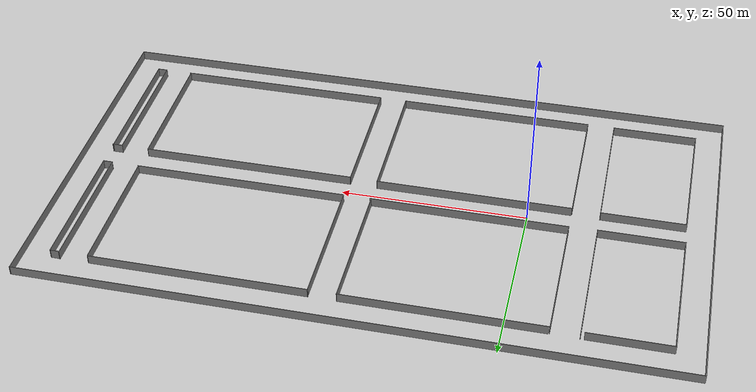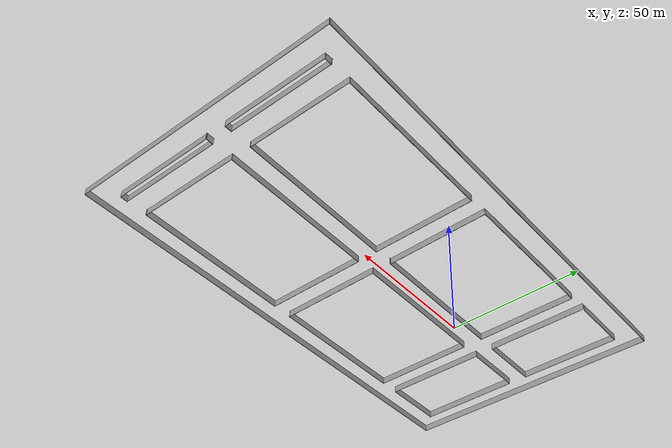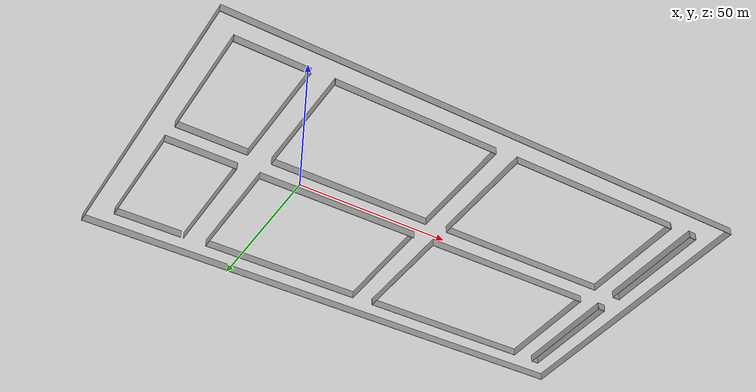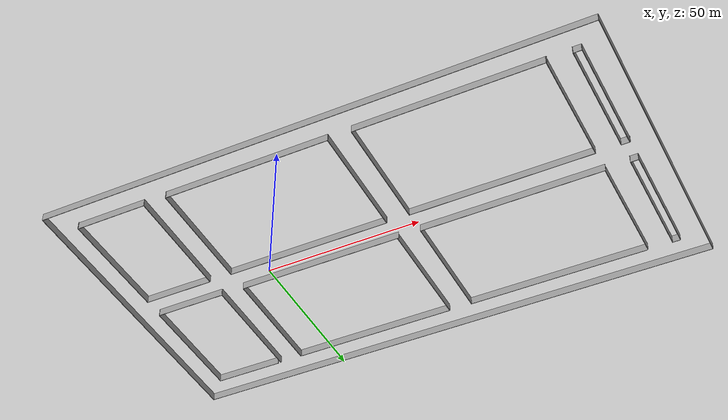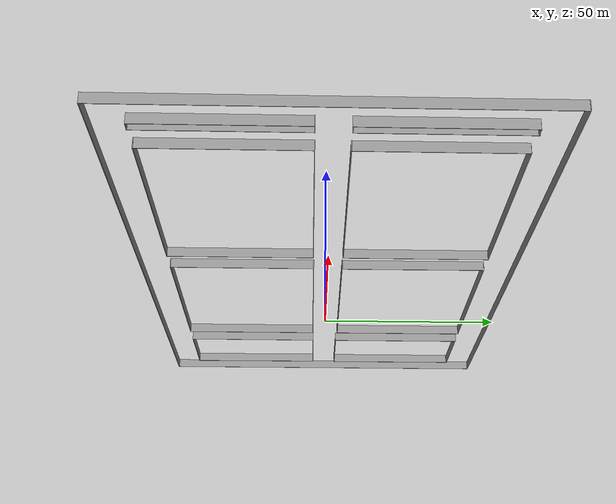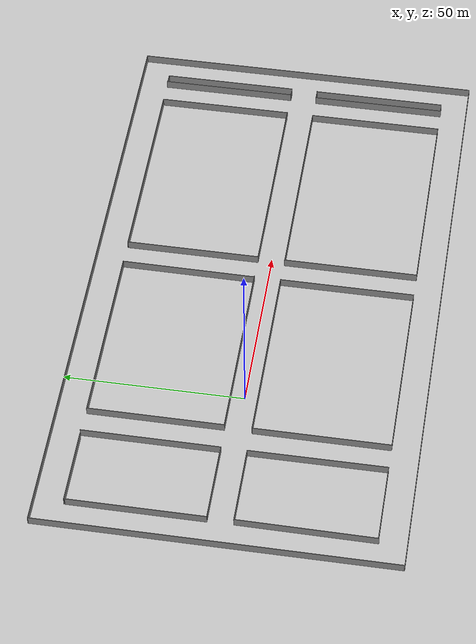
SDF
<?xml version='1.0'?>
<sdf version='1.7'>
  <model name='small_city_tracks'>
    <pose>37.5388 0.213089 0 0 -0 0</pose>
    <link name='Wall_1'>
      <collision name='Wall_1_Collision'>
        <geometry>
          <box>
            <size>22.3923 0.15 2.5</size>
          </box>
        </geometry>
        <pose>0 0 1.25 0 -0 0</pose>
      </collision>
      <visual name='Wall_1_Visual'>
        <pose>0 0 1.25 0 -0 0</pose>
        <geometry>
          <box>
            <size>22.3923 0.15 2.5</size>
          </box>
        </geometry>
        <material>
          <script>
            <uri>file://media/materials/scripts/gazebo.material</uri>
            <name>Gazebo/Grey</name>
          </script>
          <ambient>1 1 1 1</ambient>
        </material>
        <meta>
          <layer>0</layer>
        </meta>
      </visual>
      <pose>-67.5445 -3.7636 0 0 -0 3.14159</pose>
    </link>
    <link name='Wall_11'>
      <collision name='Wall_11_Collision'>
        <geometry>
          <box>
            <size>37.7906 0.15 2.5</size>
          </box>
        </geometry>
        <pose>0 0 1.25 0 -0 0</pose>
      </collision>
      <visual name='Wall_11_Visual'>
        <pose>0 0 1.25 0 -0 0</pose>
        <geometry>
          <box>
            <size>37.7906 0.15 2.5</size>
          </box>
        </geometry>
        <material>
          <script>
            <uri>file://media/materials/scripts/gazebo.material</uri>
            <name>Gazebo/Grey</name>
          </script>
          <ambient>1 1 1 1</ambient>
        </material>
        <meta>
          <layer>0</layer>
        </meta>
      </visual>
      <pose>-56.223 -22.5838 0 0 -0 -1.56772</pose>
    </link>
    <link name='Wall_13'>
      <collision name='Wall_13_Collision'>
        <geometry>
          <box>
            <size>172.5 0.15 2.5</size>
          </box>
        </geometry>
        <pose>0 0 1.25 0 -0 0</pose>
      </collision>
      <visual name='Wall_13_Visual'>
        <pose>0 0 1.25 0 -0 0</pose>
        <geometry>
          <box>
            <size>172.5 0.15 2.5</size>
          </box>
        </geometry>
        <material>
          <script>
            <uri>file://media/materials/scripts/gazebo.material</uri>
            <name>Gazebo/Grey</name>
          </script>
          <ambient>1 1 1 1</ambient>
        </material>
        <meta>
          <layer>0</layer>
        </meta>
      </visual>
      <pose>-0.028448 -49.05 0 0 -0 0</pose>
    </link>
    <link name='Wall_18'>
      <collision name='Wall_18_Collision'>
        <geometry>
          <box>
            <size>98.25 0.15 2.5</size>
          </box>
        </geometry>
        <pose>0 0 1.25 0 -0 0</pose>
      </collision>
      <visual name='Wall_18_Visual'>
        <pose>0 0 1.25 0 -0 0</pose>
        <geometry>
          <box>
            <size>98.25 0.15 2.5</size>
          </box>
        </geometry>
        <material>
          <script>
            <uri>file://media/materials/scripts/gazebo.material</uri>
            <name>Gazebo/Grey</name>
          </script>
          <ambient>1 1 1 1</ambient>
        </material>
        <meta>
          <layer>0</layer>
        </meta>
      </visual>
      <pose>86.1466 2e-06 0 0 -0 1.5708</pose>
    </link>
    <link name='Wall_20'>
      <collision name='Wall_20_Collision'>
        <geometry>
          <box>
            <size>172.5 0.15 2.5</size>
          </box>
        </geometry>
        <pose>0 0 1.25 0 -0 0</pose>
      </collision>
      <visual name='Wall_20_Visual'>
        <pose>0 0 1.25 0 -0 0</pose>
        <geometry>
          <box>
            <size>172.5 0.15 2.5</size>
          </box>
        </geometry>
        <material>
          <script>
            <uri>file://media/materials/scripts/gazebo.material</uri>
            <name>Gazebo/Grey</name>
          </script>
          <ambient>1 1 1 1</ambient>
        </material>
        <meta>
          <layer>0</layer>
        </meta>
      </visual>
      <pose>0.028448 49.0328 0 0 -0 3.14159</pose>
    </link>
    <link name='Wall_22'>
      <collision name='Wall_22_Collision'>
        <geometry>
          <box>
            <size>98 0.15 2.5</size>
          </box>
        </geometry>
        <pose>0 0 1.25 0 -0 0</pose>
      </collision>
      <visual name='Wall_22_Visual'>
        <pose>0 0 1.25 0 -0 0</pose>
        <geometry>
          <box>
            <size>98 0.15 2.5</size>
          </box>
        </geometry>
        <material>
          <script>
            <uri>file://media/materials/scripts/gazebo.material</uri>
            <name>Gazebo/Grey</name>
          </script>
          <ambient>1 1 1 1</ambient>
        </material>
        <meta>
          <layer>0</layer>
        </meta>
      </visual>
      <pose>-86.1466 0.107784 0 0 -0 -1.5708</pose>
    </link>
    <link name='Wall_24'>
      <collision name='Wall_24_Collision'>
        <geometry>
          <box>
            <size>37.5 0.15 2.5</size>
          </box>
        </geometry>
        <pose>0 0 1.25 0 -0 0</pose>
      </collision>
      <visual name='Wall_24_Visual'>
        <pose>0 0 1.25 0 -0 0</pose>
        <geometry>
          <box>
            <size>37.5 0.15 2.5</size>
          </box>
        </geometry>
        <material>
          <script>
            <uri>file://media/materials/scripts/gazebo.material</uri>
            <name>Gazebo/Grey</name>
          </script>
          <ambient>1 1 1 1</ambient>
        </material>
        <meta>
          <layer>0</layer>
        </meta>
      </visual>
      <pose>-78.8482 21.9874 0 0 -0 -1.5708</pose>
    </link>
    <link name='Wall_26'>
      <collision name='Wall_26_Collision'>
        <geometry>
          <box>
            <size>22.75 0.15 2.5</size>
          </box>
        </geometry>
        <pose>0 0 1.25 0 -0 0</pose>
      </collision>
      <visual name='Wall_26_Visual'>
        <pose>0 0 1.25 0 -0 0</pose>
        <geometry>
          <box>
            <size>22.75 0.15 2.5</size>
          </box>
        </geometry>
        <material>
          <script>
            <uri>file://media/materials/scripts/gazebo.material</uri>
            <name>Gazebo/Grey</name>
          </script>
          <ambient>1 1 1 1</ambient>
        </material>
        <meta>
          <layer>0</layer>
        </meta>
      </visual>
      <pose>-67.5482 3.31241 0 0 -0 0</pose>
    </link>
    <link name='Wall_28'>
      <collision name='Wall_28_Collision'>
        <geometry>
          <box>
            <size>38 0.15 2.5</size>
          </box>
        </geometry>
        <pose>0 0 1.25 0 -0 0</pose>
      </collision>
      <visual name='Wall_28_Visual'>
        <pose>0 0 1.25 0 -0 0</pose>
        <geometry>
          <box>
            <size>38 0.15 2.5</size>
          </box>
        </geometry>
        <material>
          <script>
            <uri>file://media/materials/scripts/gazebo.material</uri>
            <name>Gazebo/Grey</name>
          </script>
          <ambient>1 1 1 1</ambient>
        </material>
        <meta>
          <layer>0</layer>
        </meta>
      </visual>
      <pose>-56.2482 22.2374 0 0 -0 1.5708</pose>
    </link>
    <link name='Wall_30'>
      <collision name='Wall_30_Collision'>
        <geometry>
          <box>
            <size>21.75 0.15 2.5</size>
          </box>
        </geometry>
        <pose>0 0 1.25 0 -0 0</pose>
      </collision>
      <visual name='Wall_30_Visual'>
        <pose>0 0 1.25 0 -0 0</pose>
        <geometry>
          <box>
            <size>21.75 0.15 2.5</size>
          </box>
        </geometry>
        <material>
          <script>
            <uri>file://media/materials/scripts/gazebo.material</uri>
            <name>Gazebo/Grey</name>
          </script>
          <ambient>1 1 1 1</ambient>
        </material>
        <meta>
          <layer>0</layer>
        </meta>
      </visual>
      <pose>-68.058 41.0148 0 0 -0 0</pose>
    </link>
    <link name='Wall_33'>
      <collision name='Wall_33_Collision'>
        <geometry>
          <box>
            <size>37.5 0.15 2.5</size>
          </box>
        </geometry>
        <pose>0 0 1.25 0 -0 0</pose>
      </collision>
      <visual name='Wall_33_Visual'>
        <pose>0 0 1.25 0 -0 0</pose>
        <geometry>
          <box>
            <size>37.5 0.15 2.5</size>
          </box>
        </geometry>
        <material>
          <script>
            <uri>file://media/materials/scripts/gazebo.material</uri>
            <name>Gazebo/Grey</name>
          </script>
          <ambient>1 1 1 1</ambient>
        </material>
        <meta>
          <layer>0</layer>
        </meta>
      </visual>
      <pose>-48.8172 -22.7213 0 0 -0 -1.5708</pose>
    </link>
    <link name='Wall_35'>
      <collision name='Wall_35_Collision'>
        <geometry>
          <box>
            <size>52.5 0.15 2.5</size>
          </box>
        </geometry>
        <pose>0 0 1.25 0 -0 0</pose>
      </collision>
      <visual name='Wall_35_Visual'>
        <pose>0 0 1.25 0 -0 0</pose>
        <geometry>
          <box>
            <size>52.5 0.15 2.5</size>
          </box>
        </geometry>
        <material>
          <script>
            <uri>file://media/materials/scripts/gazebo.material</uri>
            <name>Gazebo/Grey</name>
          </script>
          <ambient>1 1 1 1</ambient>
        </material>
        <meta>
          <layer>0</layer>
        </meta>
      </visual>
      <pose>-22.4299 -41.3918 0 0 -0 0</pose>
    </link>
    <link name='Wall_38'>
      <collision name='Wall_38_Collision'>
        <geometry>
          <box>
            <size>37.5 0.15 2.5</size>
          </box>
        </geometry>
        <pose>0 0 1.25 0 -0 0</pose>
      </collision>
      <visual name='Wall_38_Visual'>
        <pose>0 0 1.25 0 -0 0</pose>
        <geometry>
          <box>
            <size>37.5 0.15 2.5</size>
          </box>
        </geometry>
        <material>
          <script>
            <uri>file://media/materials/scripts/gazebo.material</uri>
            <name>Gazebo/Grey</name>
          </script>
          <ambient>1 1 1 1</ambient>
        </material>
        <meta>
          <layer>0</layer>
        </meta>
      </visual>
      <pose>3.73024 -22.574 0 0 -0 1.5708</pose>
    </link>
    <link name='Wall_4'>
      <collision name='Wall_4_Collision'>
        <geometry>
          <box>
            <size>37.927 0.15 2.5</size>
          </box>
        </geometry>
        <pose>0 0 1.25 0 -0 0</pose>
      </collision>
      <visual name='Wall_4_Visual'>
        <pose>0 0 1.25 0 -0 0</pose>
        <geometry>
          <box>
            <size>37.927 0.15 2.5</size>
          </box>
        </geometry>
        <material>
          <script>
            <uri>file://media/materials/scripts/gazebo.material</uri>
            <name>Gazebo/Grey</name>
          </script>
          <ambient>1 1 1 1</ambient>
        </material>
        <meta>
          <layer>0</layer>
        </meta>
      </visual>
      <pose>-78.7733 -22.6521 0 0 -0 -1.5765</pose>
    </link>
    <link name='Wall_40'>
      <collision name='Wall_40_Collision'>
        <geometry>
          <box>
            <size>52.5 0.15 2.5</size>
          </box>
        </geometry>
        <pose>0 0 1.25 0 -0 0</pose>
      </collision>
      <visual name='Wall_40_Visual'>
        <pose>0 0 1.25 0 -0 0</pose>
        <geometry>
          <box>
            <size>52.5 0.15 2.5</size>
          </box>
        </geometry>
        <material>
          <script>
            <uri>file://media/materials/scripts/gazebo.material</uri>
            <name>Gazebo/Grey</name>
          </script>
          <ambient>1 1 1 1</ambient>
        </material>
        <meta>
          <layer>0</layer>
        </meta>
      </visual>
      <pose>-22.4448 -3.89897 0 0 -0 3.14159</pose>
    </link>
    <link name='Wall_42'>
      <collision name='Wall_42_Collision'>
        <geometry>
          <box>
            <size>37.5 0.15 2.5</size>
          </box>
        </geometry>
        <pose>0 0 1.25 0 -0 0</pose>
      </collision>
      <visual name='Wall_42_Visual'>
        <pose>0 0 1.25 0 -0 0</pose>
        <geometry>
          <box>
            <size>37.5 0.15 2.5</size>
          </box>
        </geometry>
        <material>
          <script>
            <uri>file://media/materials/scripts/gazebo.material</uri>
            <name>Gazebo/Grey</name>
          </script>
          <ambient>1 1 1 1</ambient>
        </material>
        <meta>
          <layer>0</layer>
        </meta>
      </visual>
      <pose>-48.832 22.2484 0 0 -0 -1.5708</pose>
    </link>
    <link name='Wall_44'>
      <collision name='Wall_44_Collision'>
        <geometry>
          <box>
            <size>53 0.15 2.5</size>
          </box>
        </geometry>
        <pose>0 0 1.25 0 -0 0</pose>
      </collision>
      <visual name='Wall_44_Visual'>
        <pose>0 0 1.25 0 -0 0</pose>
        <geometry>
          <box>
            <size>53 0.15 2.5</size>
          </box>
        </geometry>
        <material>
          <script>
            <uri>file://media/materials/scripts/gazebo.material</uri>
            <name>Gazebo/Grey</name>
          </script>
          <ambient>1 1 1 1</ambient>
        </material>
        <meta>
          <layer>0</layer>
        </meta>
      </visual>
      <pose>-22.407 3.57336 0 0 -0 0</pose>
    </link>
    <link name='Wall_46'>
      <collision name='Wall_46_Collision'>
        <geometry>
          <box>
            <size>37.3101 0.15 2.5</size>
          </box>
        </geometry>
        <pose>0 0 1.25 0 -0 0</pose>
      </collision>
      <visual name='Wall_46_Visual'>
        <pose>0 0 1.25 0 -0 0</pose>
        <geometry>
          <box>
            <size>37.3101 0.15 2.5</size>
          </box>
        </geometry>
        <material>
          <script>
            <uri>file://media/materials/scripts/gazebo.material</uri>
            <name>Gazebo/Grey</name>
          </script>
          <ambient>1 1 1 1</ambient>
        </material>
        <meta>
          <layer>0</layer>
        </meta>
      </visual>
      <pose>3.72448 22.3485 0 0 -0 1.56567</pose>
    </link>
    <link name='Wall_48'>
      <collision name='Wall_48_Collision'>
        <geometry>
          <box>
            <size>52.5 0.15 2.5</size>
          </box>
        </geometry>
        <pose>0 0 1.25 0 -0 0</pose>
      </collision>
      <visual name='Wall_48_Visual'>
        <pose>0 0 1.25 0 -0 0</pose>
        <geometry>
          <box>
            <size>52.5 0.15 2.5</size>
          </box>
        </geometry>
        <material>
          <script>
            <uri>file://media/materials/scripts/gazebo.material</uri>
            <name>Gazebo/Grey</name>
          </script>
          <ambient>1 1 1 1</ambient>
        </material>
        <meta>
          <layer>0</layer>
        </meta>
      </visual>
      <pose>-22.3553 40.9284 0 0 -0 3.14159</pose>
    </link>
    <link name='Wall_50'>
      <collision name='Wall_50_Collision'>
        <geometry>
          <box>
            <size>37.5 0.15 2.5</size>
          </box>
        </geometry>
        <pose>0 0 1.25 0 -0 0</pose>
      </collision>
      <visual name='Wall_50_Visual'>
        <pose>0 0 1.25 0 -0 0</pose>
        <geometry>
          <box>
            <size>37.5 0.15 2.5</size>
          </box>
        </geometry>
        <material>
          <script>
            <uri>file://media/materials/scripts/gazebo.material</uri>
            <name>Gazebo/Grey</name>
          </script>
          <ambient>1 1 1 1</ambient>
        </material>
        <meta>
          <layer>0</layer>
        </meta>
      </visual>
      <pose>11.121 -22.6822 0 0 -0 -1.5708</pose>
    </link>
    <link name='Wall_52'>
      <collision name='Wall_52_Collision'>
        <geometry>
          <box>
            <size>57.75 0.15 2.5</size>
          </box>
        </geometry>
        <pose>0 0 1.25 0 -0 0</pose>
      </collision>
      <visual name='Wall_52_Visual'>
        <pose>0 0 1.25 0 -0 0</pose>
        <geometry>
          <box>
            <size>57.75 0.15 2.5</size>
          </box>
        </geometry>
        <material>
          <script>
            <uri>file://media/materials/scripts/gazebo.material</uri>
            <name>Gazebo/Grey</name>
          </script>
          <ambient>1 1 1 1</ambient>
        </material>
        <meta>
          <layer>0</layer>
        </meta>
      </visual>
      <pose>40.016 -41.4057 0 0 -0 0</pose>
    </link>
    <link name='Wall_54'>
      <collision name='Wall_54_Collision'>
        <geometry>
          <box>
            <size>37.5 0.15 2.5</size>
          </box>
        </geometry>
        <pose>0 0 1.25 0 -0 0</pose>
      </collision>
      <visual name='Wall_54_Visual'>
        <pose>0 0 1.25 0 -0 0</pose>
        <geometry>
          <box>
            <size>37.5 0.15 2.5</size>
          </box>
        </geometry>
        <material>
          <script>
            <uri>file://media/materials/scripts/gazebo.material</uri>
            <name>Gazebo/Grey</name>
          </script>
          <ambient>1 1 1 1</ambient>
        </material>
        <meta>
          <layer>0</layer>
        </meta>
      </visual>
      <pose>68.6655 -22.7367 0 0 -0 1.5708</pose>
    </link>
    <link name='Wall_56'>
      <collision name='Wall_56_Collision'>
        <geometry>
          <box>
            <size>57.5 0.15 2.5</size>
          </box>
        </geometry>
        <pose>0 0 1.25 0 -0 0</pose>
      </collision>
      <visual name='Wall_56_Visual'>
        <pose>0 0 1.25 0 -0 0</pose>
        <geometry>
          <box>
            <size>57.5 0.15 2.5</size>
          </box>
        </geometry>
        <material>
          <script>
            <uri>file://media/materials/scripts/gazebo.material</uri>
            <name>Gazebo/Grey</name>
          </script>
          <ambient>1 1 1 1</ambient>
        </material>
        <meta>
          <layer>0</layer>
        </meta>
      </visual>
      <pose>39.8682 -4.03088 0 0 -0 3.14159</pose>
    </link>
    <link name='Wall_58'>
      <collision name='Wall_58_Collision'>
        <geometry>
          <box>
            <size>37.5 0.15 2.5</size>
          </box>
        </geometry>
        <pose>0 0 1.25 0 -0 0</pose>
      </collision>
      <visual name='Wall_58_Visual'>
        <pose>0 0 1.25 0 -0 0</pose>
        <geometry>
          <box>
            <size>37.5 0.15 2.5</size>
          </box>
        </geometry>
        <material>
          <script>
            <uri>file://media/materials/scripts/gazebo.material</uri>
            <name>Gazebo/Grey</name>
          </script>
          <ambient>1 1 1 1</ambient>
        </material>
        <meta>
          <layer>0</layer>
        </meta>
      </visual>
      <pose>11.1791 22.2892 0 0 -0 -1.5708</pose>
    </link>
    <link name='Wall_60'>
      <collision name='Wall_60_Collision'>
        <geometry>
          <box>
            <size>57.75 0.15 2.5</size>
          </box>
        </geometry>
        <pose>0 0 1.25 0 -0 0</pose>
      </collision>
      <visual name='Wall_60_Visual'>
        <pose>0 0 1.25 0 -0 0</pose>
        <geometry>
          <box>
            <size>57.75 0.15 2.5</size>
          </box>
        </geometry>
        <material>
          <script>
            <uri>file://media/materials/scripts/gazebo.material</uri>
            <name>Gazebo/Grey</name>
          </script>
          <ambient>1 1 1 1</ambient>
        </material>
        <meta>
          <layer>0</layer>
        </meta>
      </visual>
      <pose>39.9791 3.61416 0 0 -0 0</pose>
    </link>
    <link name='Wall_62'>
      <collision name='Wall_62_Collision'>
        <geometry>
          <box>
            <size>37.25 0.15 2.5</size>
          </box>
        </geometry>
        <pose>0 0 1.25 0 -0 0</pose>
      </collision>
      <visual name='Wall_62_Visual'>
        <pose>0 0 1.25 0 -0 0</pose>
        <geometry>
          <box>
            <size>37.25 0.15 2.5</size>
          </box>
        </geometry>
        <material>
          <script>
            <uri>file://media/materials/scripts/gazebo.material</uri>
            <name>Gazebo/Grey</name>
          </script>
          <ambient>1 1 1 1</ambient>
        </material>
        <meta>
          <layer>0</layer>
        </meta>
      </visual>
      <pose>68.6691 22.3171 0 0 -0 1.5708</pose>
    </link>
    <link name='Wall_64'>
      <collision name='Wall_64_Collision'>
        <geometry>
          <box>
            <size>57.5 0.15 2.5</size>
          </box>
        </geometry>
        <pose>0 0 1.25 0 -0 0</pose>
      </collision>
      <visual name='Wall_64_Visual'>
        <pose>0 0 1.25 0 -0 0</pose>
        <geometry>
          <box>
            <size>57.5 0.15 2.5</size>
          </box>
        </geometry>
        <material>
          <script>
            <uri>file://media/materials/scripts/gazebo.material</uri>
            <name>Gazebo/Grey</name>
          </script>
          <ambient>1 1 1 1</ambient>
        </material>
        <meta>
          <layer>0</layer>
        </meta>
      </visual>
      <pose>39.7955 40.9564 0 0 -0 3.14159</pose>
    </link>
    <link name='Wall_66'>
      <collision name='Wall_66_Collision'>
        <geometry>
          <box>
            <size>2.5 0.15 2.5</size>
          </box>
        </geometry>
        <pose>0 0 1.25 0 -0 0</pose>
      </collision>
      <visual name='Wall_66_Visual'>
        <pose>0 0 1.25 0 -0 0</pose>
        <geometry>
          <box>
            <size>2.5 0.15 2.5</size>
          </box>
        </geometry>
        <material>
          <script>
            <uri>file://media/materials/scripts/gazebo.material</uri>
            <name>Gazebo/Grey</name>
          </script>
          <ambient>1 1 1 1</ambient>
        </material>
        <meta>
          <layer>0</layer>
        </meta>
      </visual>
      <pose>77.3824 -41.3947 0 0 -0 0</pose>
    </link>
    <link name='Wall_69'>
      <collision name='Wall_69_Collision'>
        <geometry>
          <box>
            <size>37.5845 0.15 2.5</size>
          </box>
        </geometry>
        <pose>0 0 1.25 0 -0 0</pose>
      </collision>
      <visual name='Wall_69_Visual'>
        <pose>0 0 1.25 0 -0 0</pose>
        <geometry>
          <box>
            <size>37.5845 0.15 2.5</size>
          </box>
        </geometry>
        <material>
          <script>
            <uri>file://media/materials/scripts/gazebo.material</uri>
            <name>Gazebo/Grey</name>
          </script>
          <ambient>1 1 1 1</ambient>
        </material>
        <meta>
          <layer>0</layer>
        </meta>
      </visual>
      <pose>76.2035 -22.7394 0 0 -0 1.5708</pose>
    </link>
    <link name='Wall_7'>
      <collision name='Wall_7_Collision'>
        <geometry>
          <box>
            <size>22.6423 0.15 2.5</size>
          </box>
        </geometry>
        <pose>0 0 1.25 0 -0 0</pose>
      </collision>
      <visual name='Wall_7_Visual'>
        <pose>0 0 1.25 0 -0 0</pose>
        <geometry>
          <box>
            <size>22.6423 0.15 2.5</size>
          </box>
        </geometry>
        <material>
          <script>
            <uri>file://media/materials/scripts/gazebo.material</uri>
            <name>Gazebo/Grey</name>
          </script>
          <ambient>1 1 1 1</ambient>
        </material>
        <meta>
          <layer>0</layer>
        </meta>
      </visual>
      <pose>-67.5536 -41.404 0 0 -0 0</pose>
    </link>
    <link name='Wall_71'>
      <collision name='Wall_71_Collision'>
        <geometry>
          <box>
            <size>2.83106 0.15 2.5</size>
          </box>
        </geometry>
        <pose>0 0 1.25 0 -0 0</pose>
      </collision>
      <visual name='Wall_71_Visual'>
        <pose>0 0 1.25 0 -0 0</pose>
        <geometry>
          <box>
            <size>2.83106 0.15 2.5</size>
          </box>
        </geometry>
        <material>
          <script>
            <uri>file://media/materials/scripts/gazebo.material</uri>
            <name>Gazebo/Grey</name>
          </script>
          <ambient>1 1 1 1</ambient>
        </material>
        <meta>
          <layer>0</layer>
        </meta>
      </visual>
      <pose>77.544 -4.02213 0 0 -0 0</pose>
    </link>
    <link name='Wall_73'>
      <collision name='Wall_73_Collision'>
        <geometry>
          <box>
            <size>37.5 0.15 2.5</size>
          </box>
        </geometry>
        <pose>0 0 1.25 0 -0 0</pose>
      </collision>
      <visual name='Wall_73_Visual'>
        <pose>0 0 1.25 0 -0 0</pose>
        <geometry>
          <box>
            <size>37.5 0.15 2.5</size>
          </box>
        </geometry>
        <material>
          <script>
            <uri>file://media/materials/scripts/gazebo.material</uri>
            <name>Gazebo/Grey</name>
          </script>
          <ambient>1 1 1 1</ambient>
        </material>
        <meta>
          <layer>0</layer>
        </meta>
      </visual>
      <pose>78.719 -22.6971 0 0 -0 -1.5708</pose>
    </link>
    <link name='Wall_75'>
      <collision name='Wall_75_Collision'>
        <geometry>
          <box>
            <size>2.5 0.15 2.5</size>
          </box>
        </geometry>
        <pose>0 0 1.25 0 -0 0</pose>
      </collision>
      <visual name='Wall_75_Visual'>
        <pose>0 0 1.25 0 -0 0</pose>
        <geometry>
          <box>
            <size>2.5 0.15 2.5</size>
          </box>
        </geometry>
        <material>
          <script>
            <uri>file://media/materials/scripts/gazebo.material</uri>
            <name>Gazebo/Grey</name>
          </script>
          <ambient>1 1 1 1</ambient>
        </material>
        <meta>
          <layer>0</layer>
        </meta>
      </visual>
      <pose>77.4295 3.5693 0 0 -0 0</pose>
    </link>
    <link name='Wall_77'>
      <collision name='Wall_77_Collision'>
        <geometry>
          <box>
            <size>37.75 0.15 2.5</size>
          </box>
        </geometry>
        <pose>0 0 1.25 0 -0 0</pose>
      </collision>
      <visual name='Wall_77_Visual'>
        <pose>0 0 1.25 0 -0 0</pose>
        <geometry>
          <box>
            <size>37.75 0.15 2.5</size>
          </box>
        </geometry>
        <material>
          <script>
            <uri>file://media/materials/scripts/gazebo.material</uri>
            <name>Gazebo/Grey</name>
          </script>
          <ambient>1 1 1 1</ambient>
        </material>
        <meta>
          <layer>0</layer>
        </meta>
      </visual>
      <pose>76.2545 22.3693 0 0 -0 1.5708</pose>
    </link>
    <link name='Wall_79'>
      <collision name='Wall_79_Collision'>
        <geometry>
          <box>
            <size>2.25 0.15 2.5</size>
          </box>
        </geometry>
        <pose>0 0 1.25 0 -0 0</pose>
      </collision>
      <visual name='Wall_79_Visual'>
        <pose>0 0 1.25 0 -0 0</pose>
        <geometry>
          <box>
            <size>2.25 0.15 2.5</size>
          </box>
        </geometry>
        <material>
          <script>
            <uri>file://media/materials/scripts/gazebo.material</uri>
            <name>Gazebo/Grey</name>
          </script>
          <ambient>1 1 1 1</ambient>
        </material>
        <meta>
          <layer>0</layer>
        </meta>
      </visual>
      <pose>77.4385 40.9864 0 0 -0 0</pose>
    </link>
    <link name='Wall_83'>
      <collision name='Wall_83_Collision'>
        <geometry>
          <box>
            <size>37.5 0.15 2.5</size>
          </box>
        </geometry>
        <pose>0 0 1.25 0 -0 0</pose>
      </collision>
      <visual name='Wall_83_Visual'>
        <pose>0 0 1.25 0 -0 0</pose>
        <geometry>
          <box>
            <size>37.5 0.15 2.5</size>
          </box>
        </geometry>
        <material>
          <script>
            <uri>file://media/materials/scripts/gazebo.material</uri>
            <name>Gazebo/Grey</name>
          </script>
          <ambient>1 1 1 1</ambient>
        </material>
        <meta>
          <layer>0</layer>
        </meta>
      </visual>
      <pose>78.7059 22.2304 0 0 -0 -1.5708</pose>
    </link>
    <static>1</static>
  </model>
</sdf>
